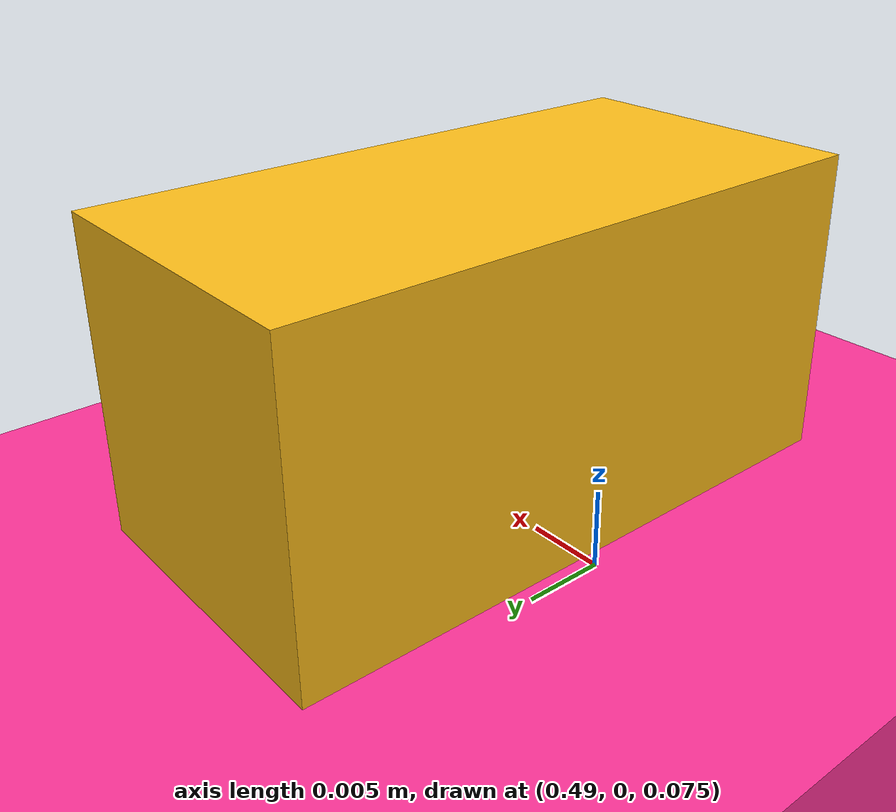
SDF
<?xml version="1.0" ?>

<sdf version="1.8">

  <world name="default">

    <!--
      物理引擎设置。除非明确需要改变仿真精度或速度，否则建议保持不变。
      本工程的 ros2_control 控制器更新频率为 100 Hz。
    -->
    <physics
        name="physics"
        type="ignored">

      <!-- 控制器 100 Hz。10 ms 步长避免整机 STL 碰撞把实时因子打到接近 0。 -->
      <max_step_size>
        0.01
      </max_step_size>

      <real_time_factor>
        <!--
          目标实时倍率：1.0 表示尽量按真实时间运行；小于 1 表示允许慢于实时。
          这只是目标，实际倍率仍受 CPU、显卡和碰撞计算负载影响。
        -->
        1.0
      </real_time_factor>

      <!-- FR3 使用 STL 碰撞网格。默认的 DART/FCL 网格碰撞会把实时因子
           降到接近 0；使用已安装的 Bullet 碰撞检测器和 PGS 求解器，仍保留
           重力、碰撞和关节动力学，同时可正常推进仿真时间。 -->
      <dart>
        <collision_detector>bullet</collision_detector>
        <solver>
          <solver_type>pgs</solver_type>
        </solver>
      </dart>

    </physics>

    <gravity>
      <!-- 重力加速度 (x y z)，单位 m/s²；-9.81 表示沿世界 z 轴向下。 -->
      0 0 -9.81
    </gravity>

    <!--
      场景外观参数：ambient 是环境光 RGBA，background 是背景色 RGBA，范围均为 0~1。
      它们只影响显示效果，不影响碰撞或物理行为。
    -->
    <scene>
      <ambient>0.35 0.35 0.35 1</ambient>
      <background>0.12 0.12 0.16 1</background>
    </scene>

    <light
        type="directional"
        name="sun">

      <pose>
        <!-- 光源位置与朝向；方向光的位置通常不重要，主要看下面的 direction。 -->
        0 0 10 0 0 0
      </pose>

      <direction>
        <!-- 光线传播方向。三个数字为方向向量，不是目标点坐标。 -->
        -0.5 0.1 -0.9
      </direction>

    </light>

    <!--
      地面：static=true 表示它不会受重力或碰撞推动。
      若需要更大可活动范围，增大 plane 的 size；例如 20 20 表示 20 × 20 m。
    -->
    <model name="ground">

      <static>true</static>

      <link name="link">

        <collision name="collision">

          <geometry>
            <plane>
              <!-- 法向量 0 0 1 使平面朝向 +z，即水平地面。 -->
              <normal>
                0 0 1
              </normal>

              <size>
                <!-- 地面显示和碰撞的长度、宽度，单位：m。 -->
                10 10
              </size>
            </plane>
          </geometry>

        </collision>

        <visual name="visual">

          <geometry>
            <plane>

              <normal>
                0 0 1
              </normal>

              <size>
                10 10
              </size>

            </plane>
          </geometry>

        </visual>

      </link>

    </model>

    <model name="table">

      <static>true</static>

      <pose>
        <!--
          工作台中心的世界坐标。当前中心为 (0.5, 0, 0.05)。
          桌面厚度为 0.05 m，因此桌面上表面高度 = 0.05 + 0.05 / 2 = 0.075 m。
        -->
        0.5 0 0.05 0 0 0
      </pose>

      <link name="table_link">

        <collision name="collision">

          <geometry>

            <box>
              <!-- 桌面盒子尺寸：x(前后长度) × y(左右宽度) × z(厚度)，单位：m。 -->
              <size>
                0.5 0.5 0.05
              </size>
            </box>

          </geometry>

        </collision>

        <visual name="visual">

          <geometry>

            <box>
              <size>
                0.5 0.5 0.05
              </size>
            </box>

          </geometry>

          <!-- 高可见度粉色工作台面。 -->
          <!--
            颜色均为 RGBA，范围 0~1：ambient 是环境光下的颜色，diffuse 是直射光下的颜色，
            emissive 为自发光成分，specular 控制高光。只想快速换色时，优先修改 diffuse。
          -->
          <material>
            <ambient>0.60 0.08 0.35 1</ambient>
            <diffuse>1.00 0.20 0.60 1</diffuse>
            <emissive>0.16 0.02 0.08 1</emissive>
            <specular>0.25 0.08 0.18 1</specular>
          </material>

        </visual>

      </link>

    </model>

    <model name="small_part">

      <static>false</static>

      <!--
           桌面顶部 z = 0.075（桌子中心 0.05 + 厚度一半 0.025）。
           零件半高 = 0.010，静止后中心 z = 0.085。
           初始 z 略高 1 mm，避免生成时嵌入桌面。
      -->

      <pose>
        <!-- 零件中心的世界坐标：x y z roll pitch yaw。 -->
        0.5 0 0.086 0 0 0
      </pose>

      <link name="part_link">

        <inertial>

          <mass>
            <!-- 质量单位：kg；0.03 即 30 g，便于接触仿真稳定。 -->
            0.03
          </mass>

          <inertia>
            <!-- 长方体 m*(b²+c²)/12，单位 kg·m²。 -->
            <ixx>5.0e-6</ixx>
            <iyy>2.0e-6</iyy>
            <izz>5.0e-6</izz>

            <ixy>0</ixy>
            <ixz>0</ixz>
            <iyz>0</iyz>
          </inertia>

        </inertial>

        <collision name="collision">

          <geometry>

            <box>
              <!-- 20 × 40 × 20 mm。 -->
              <size>
                0.020 0.040 0.020
              </size>
            </box>

          </geometry>

          <surface>
            <friction>
              <ode>
                <mu>1.5</mu>
                <mu2>1.5</mu2>
              </ode>
            </friction>
            <contact>
              <ode>
                <kp>1e6</kp>
                <kd>1.0</kd>
                <min_depth>0.0005</min_depth>
              </ode>
            </contact>
          </surface>

        </collision>

        <visual name="visual">

          <geometry>

            <box>
              <size>
                0.020 0.040 0.020
              </size>
            </box>

          </geometry>

          <material>
            <ambient>0.80 0.55 0.05 1</ambient>
            <diffuse>1.00 0.75 0.10 1</diffuse>
            <emissive>0.18 0.10 0.00 1</emissive>
            <specular>0.35 0.28 0.08 1</specular>
          </material>

        </visual>

      </link>

    </model>

  </world>

</sdf>
